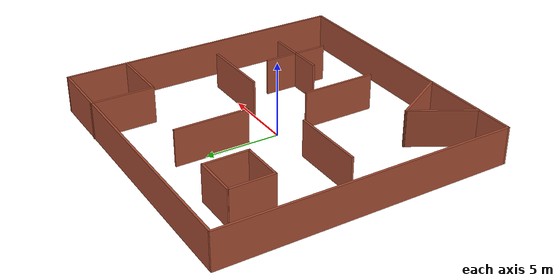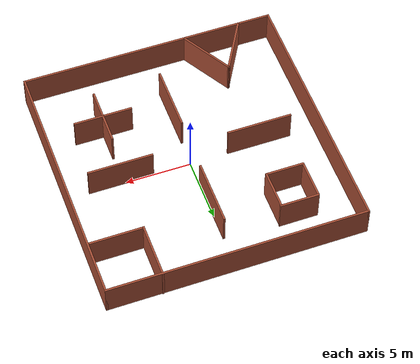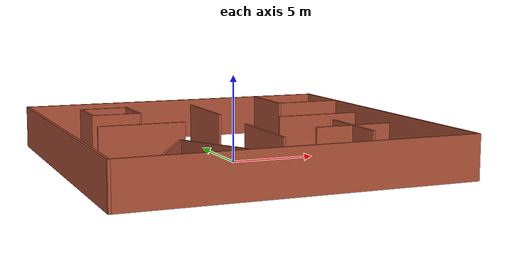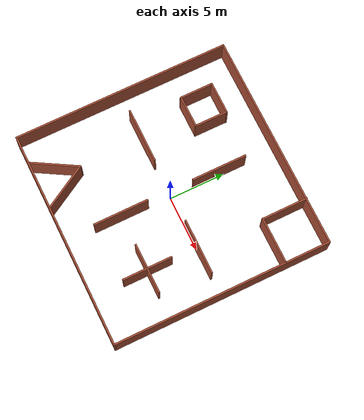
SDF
<?xml version='1.0'?>
<sdf version='1.7'>
  <model name='container'>
    <pose>-0.08 0.09238 0 0 -0 0</pose>
    <link name='Wall_10'>
      <collision name='Wall_10_Collision'>
        <geometry>
          <box>
            <size>19.75 0.15 2.5</size>
          </box>
        </geometry>
        <pose>0 0 1.25 0 -0 0</pose>
      </collision>
      <visual name='Wall_10_Visual'>
        <pose>0 0 1.25 0 -0 0</pose>
        <geometry>
          <box>
            <size>19.75 0.15 2.5</size>
          </box>
        </geometry>
        <material>
          <script>
            <uri>file://media/materials/scripts/gazebo.material</uri>
            <name>Gazebo/Bricks</name>
          </script>
          <ambient>1 1 1 1</ambient>
        </material>
        <meta>
          <layer>0</layer>
        </meta>
      </visual>
      <pose>-0 9.77762 0 0 -0 0</pose>
    </link>
    <link name='Wall_11'>
      <collision name='Wall_11_Collision'>
        <geometry>
          <box>
            <size>19.75 0.15 2.5</size>
          </box>
        </geometry>
        <pose>0 0 1.25 0 -0 0</pose>
      </collision>
      <visual name='Wall_11_Visual'>
        <pose>0 0 1.25 0 -0 0</pose>
        <geometry>
          <box>
            <size>19.75 0.15 2.5</size>
          </box>
        </geometry>
        <material>
          <script>
            <uri>file://media/materials/scripts/gazebo.material</uri>
            <name>Gazebo/Bricks</name>
          </script>
          <ambient>1 1 1 1</ambient>
        </material>
        <meta>
          <layer>0</layer>
        </meta>
      </visual>
      <pose>9.8 -0.02238 0 0 -0 -1.5708</pose>
    </link>
    <link name='Wall_12'>
      <collision name='Wall_12_Collision'>
        <geometry>
          <box>
            <size>19.75 0.15 2.5</size>
          </box>
        </geometry>
        <pose>0 0 1.25 0 -0 0</pose>
      </collision>
      <visual name='Wall_12_Visual'>
        <pose>0 0 1.25 0 -0 0</pose>
        <geometry>
          <box>
            <size>19.75 0.15 2.5</size>
          </box>
        </geometry>
        <material>
          <script>
            <uri>file://media/materials/scripts/gazebo.material</uri>
            <name>Gazebo/Bricks</name>
          </script>
          <ambient>1 1 1 1</ambient>
        </material>
        <meta>
          <layer>0</layer>
        </meta>
      </visual>
      <pose>-0 -9.82238 0 0 -0 3.14159</pose>
    </link>
    <link name='Wall_16'>
      <collision name='Wall_16_Collision'>
        <geometry>
          <box>
            <size>5 0.15 2.5</size>
          </box>
        </geometry>
        <pose>0 0 1.25 0 -0 0</pose>
      </collision>
      <visual name='Wall_16_Visual'>
        <pose>0 0 1.25 0 -0 0</pose>
        <geometry>
          <box>
            <size>5 0.15 2.5</size>
          </box>
        </geometry>
        <material>
          <script>
            <uri>file://media/materials/scripts/gazebo.material</uri>
            <name>Gazebo/Bricks</name>
          </script>
          <ambient>1 1 1 1</ambient>
        </material>
        <meta>
          <layer>0</layer>
        </meta>
      </visual>
      <pose>0.005004 -4.63433 0 0 -0 1.5708</pose>
    </link>
    <link name='Wall_19'>
      <collision name='Wall_19_Collision'>
        <geometry>
          <box>
            <size>5 0.15 2.5</size>
          </box>
        </geometry>
        <pose>0 0 1.25 0 -0 0</pose>
      </collision>
      <visual name='Wall_19_Visual'>
        <pose>0 0 1.25 0 -0 0</pose>
        <geometry>
          <box>
            <size>5 0.15 2.5</size>
          </box>
        </geometry>
        <material>
          <script>
            <uri>file://media/materials/scripts/gazebo.material</uri>
            <name>Gazebo/Bricks</name>
          </script>
          <ambient>1 1 1 1</ambient>
        </material>
        <meta>
          <layer>0</layer>
        </meta>
      </visual>
      <pose>0.064517 4.48127 0 0 -0 -1.5708</pose>
    </link>
    <link name='Wall_21'>
      <collision name='Wall_21_Collision'>
        <geometry>
          <box>
            <size>5 0.15 2.5</size>
          </box>
        </geometry>
        <pose>0 0 1.25 0 -0 0</pose>
      </collision>
      <visual name='Wall_21_Visual'>
        <pose>0 0 1.25 0 -0 0</pose>
        <geometry>
          <box>
            <size>5 0.15 2.5</size>
          </box>
        </geometry>
        <material>
          <script>
            <uri>file://media/materials/scripts/gazebo.material</uri>
            <name>Gazebo/Bricks</name>
          </script>
          <ambient>1 1 1 1</ambient>
        </material>
        <meta>
          <layer>0</layer>
        </meta>
      </visual>
      <pose>-5.3463 -0.136044 0 0 -0 0</pose>
    </link>
    <link name='Wall_23'>
      <collision name='Wall_23_Collision'>
        <geometry>
          <box>
            <size>5 0.15 2.5</size>
          </box>
        </geometry>
        <pose>0 0 1.25 0 -0 0</pose>
      </collision>
      <visual name='Wall_23_Visual'>
        <pose>0 0 1.25 0 -0 0</pose>
        <geometry>
          <box>
            <size>5 0.15 2.5</size>
          </box>
        </geometry>
        <material>
          <script>
            <uri>file://media/materials/scripts/gazebo.material</uri>
            <name>Gazebo/Bricks</name>
          </script>
          <ambient>1 1 1 1</ambient>
        </material>
        <meta>
          <layer>0</layer>
        </meta>
      </visual>
      <pose>5.4453 -0.116206 0 0 -0 0</pose>
    </link>
    <link name='Wall_27'>
      <collision name='Wall_27_Collision'>
        <geometry>
          <box>
            <size>3 0.15 2.5</size>
          </box>
        </geometry>
        <pose>0 0 1.25 0 -0 0</pose>
      </collision>
      <visual name='Wall_27_Visual'>
        <pose>0 0 1.25 0 -0 0</pose>
        <geometry>
          <box>
            <size>3 0.15 2.5</size>
          </box>
        </geometry>
        <material>
          <script>
            <uri>file://media/materials/scripts/gazebo.material</uri>
            <name>Gazebo/Bricks</name>
          </script>
          <ambient>1 1 1 1</ambient>
        </material>
        <meta>
          <layer>0</layer>
        </meta>
      </visual>
      <pose>-6.99763 5.75899 0 0 -0 -1.5708</pose>
    </link>
    <link name='Wall_28'>
      <collision name='Wall_28_Collision'>
        <geometry>
          <box>
            <size>3 0.15 2.5</size>
          </box>
        </geometry>
        <pose>0 0 1.25 0 -0 0</pose>
      </collision>
      <visual name='Wall_28_Visual'>
        <pose>0 0 1.25 0 -0 0</pose>
        <geometry>
          <box>
            <size>3 0.15 2.5</size>
          </box>
        </geometry>
        <material>
          <script>
            <uri>file://media/materials/scripts/gazebo.material</uri>
            <name>Gazebo/Bricks</name>
          </script>
          <ambient>1 1 1 1</ambient>
        </material>
        <meta>
          <layer>0</layer>
        </meta>
      </visual>
      <pose>-5.57263 4.33399 0 0 -0 0</pose>
    </link>
    <link name='Wall_29'>
      <collision name='Wall_29_Collision'>
        <geometry>
          <box>
            <size>3 0.15 2.5</size>
          </box>
        </geometry>
        <pose>0 0 1.25 0 -0 0</pose>
      </collision>
      <visual name='Wall_29_Visual'>
        <pose>0 0 1.25 0 -0 0</pose>
        <geometry>
          <box>
            <size>3 0.15 2.5</size>
          </box>
        </geometry>
        <material>
          <script>
            <uri>file://media/materials/scripts/gazebo.material</uri>
            <name>Gazebo/Bricks</name>
          </script>
          <ambient>1 1 1 1</ambient>
        </material>
        <meta>
          <layer>0</layer>
        </meta>
      </visual>
      <pose>-4.14763 5.75899 0 0 -0 1.5708</pose>
    </link>
    <link name='Wall_30'>
      <collision name='Wall_30_Collision'>
        <geometry>
          <box>
            <size>3 0.15 2.5</size>
          </box>
        </geometry>
        <pose>0 0 1.25 0 -0 0</pose>
      </collision>
      <visual name='Wall_30_Visual'>
        <pose>0 0 1.25 0 -0 0</pose>
        <geometry>
          <box>
            <size>3 0.15 2.5</size>
          </box>
        </geometry>
        <material>
          <script>
            <uri>file://media/materials/scripts/gazebo.material</uri>
            <name>Gazebo/Bricks</name>
          </script>
          <ambient>1 1 1 1</ambient>
        </material>
        <meta>
          <layer>0</layer>
        </meta>
      </visual>
      <pose>-5.5528 7.26334 0 0 -0 3.14159</pose>
    </link>
    <link name='Wall_32'>
      <collision name='Wall_32_Collision'>
        <geometry>
          <box>
            <size>4.5 0.15 2.5</size>
          </box>
        </geometry>
        <pose>0 0 1.25 0 -0 0</pose>
      </collision>
      <visual name='Wall_32_Visual'>
        <pose>0 0 1.25 0 -0 0</pose>
        <geometry>
          <box>
            <size>4.5 0.15 2.5</size>
          </box>
        </geometry>
        <material>
          <script>
            <uri>file://media/materials/scripts/gazebo.material</uri>
            <name>Gazebo/Bricks</name>
          </script>
          <ambient>1 1 1 1</ambient>
        </material>
        <meta>
          <layer>0</layer>
        </meta>
      </visual>
      <pose>-6.2077 -7.89346 0 0 -0 1.0472</pose>
    </link>
    <link name='Wall_33'>
      <collision name='Wall_33_Collision'>
        <geometry>
          <box>
            <size>4.5 0.15 2.5</size>
          </box>
        </geometry>
        <pose>0 0 1.25 0 -0 0</pose>
      </collision>
      <visual name='Wall_33_Visual'>
        <pose>0 0 1.25 0 -0 0</pose>
        <geometry>
          <box>
            <size>4.5 0.15 2.5</size>
          </box>
        </geometry>
        <material>
          <script>
            <uri>file://media/materials/scripts/gazebo.material</uri>
            <name>Gazebo/Bricks</name>
          </script>
          <ambient>1 1 1 1</ambient>
        </material>
        <meta>
          <layer>0</layer>
        </meta>
      </visual>
      <pose>-4.0327 -7.89346 0 0 -0 -1.0472</pose>
    </link>
    <link name='Wall_35'>
      <collision name='Wall_35_Collision'>
        <geometry>
          <box>
            <size>4.5 0.15 2.5</size>
          </box>
        </geometry>
        <pose>0 0 1.25 0 -0 0</pose>
      </collision>
      <visual name='Wall_35_Visual'>
        <pose>0 0 1.25 0 -0 0</pose>
        <geometry>
          <box>
            <size>4.5 0.15 2.5</size>
          </box>
        </geometry>
        <material>
          <script>
            <uri>file://media/materials/scripts/gazebo.material</uri>
            <name>Gazebo/Bricks</name>
          </script>
          <ambient>1 1 1 1</ambient>
        </material>
        <meta>
          <layer>0</layer>
        </meta>
      </visual>
      <pose>5.28178 -4.71138 0 0 -0 -1.5708</pose>
    </link>
    <link name='Wall_37'>
      <collision name='Wall_37_Collision'>
        <geometry>
          <box>
            <size>4.5 0.15 2.5</size>
          </box>
        </geometry>
        <pose>0 0 1.25 0 -0 0</pose>
      </collision>
      <visual name='Wall_37_Visual'>
        <pose>0 0 1.25 0 -0 0</pose>
        <geometry>
          <box>
            <size>4.5 0.15 2.5</size>
          </box>
        </geometry>
        <material>
          <script>
            <uri>file://media/materials/scripts/gazebo.material</uri>
            <name>Gazebo/Bricks</name>
          </script>
          <ambient>1 1 1 1</ambient>
        </material>
        <meta>
          <layer>0</layer>
        </meta>
      </visual>
      <pose>5.27465 -4.71851 0 0 -0 0</pose>
    </link>
    <link name='Wall_39'>
      <collision name='Wall_39_Collision'>
        <geometry>
          <box>
            <size>4.25 0.15 2.5</size>
          </box>
        </geometry>
        <pose>0 0 1.25 0 -0 0</pose>
      </collision>
      <visual name='Wall_39_Visual'>
        <pose>0 0 1.25 0 -0 0</pose>
        <geometry>
          <box>
            <size>4.25 0.15 2.5</size>
          </box>
        </geometry>
        <material>
          <script>
            <uri>file://media/materials/scripts/gazebo.material</uri>
            <name>Gazebo/Bricks</name>
          </script>
          <ambient>1 1 1 1</ambient>
        </material>
        <meta>
          <layer>0</layer>
        </meta>
      </visual>
      <pose>5.65869 7.77238 0 0 -0 -1.5708</pose>
    </link>
    <link name='Wall_40'>
      <collision name='Wall_40_Collision'>
        <geometry>
          <box>
            <size>4.25 0.15 2.5</size>
          </box>
        </geometry>
        <pose>0 0 1.25 0 -0 0</pose>
      </collision>
      <visual name='Wall_40_Visual'>
        <pose>0 0 1.25 0 -0 0</pose>
        <geometry>
          <box>
            <size>4.25 0.15 2.5</size>
          </box>
        </geometry>
        <material>
          <script>
            <uri>file://media/materials/scripts/gazebo.material</uri>
            <name>Gazebo/Bricks</name>
          </script>
          <ambient>1 1 1 1</ambient>
        </material>
        <meta>
          <layer>0</layer>
        </meta>
      </visual>
      <pose>7.70869 5.72238 0 0 -0 0</pose>
    </link>
    <link name='Wall_9'>
      <collision name='Wall_9_Collision'>
        <geometry>
          <box>
            <size>19.75 0.15 2.5</size>
          </box>
        </geometry>
        <pose>0 0 1.25 0 -0 0</pose>
      </collision>
      <visual name='Wall_9_Visual'>
        <pose>0 0 1.25 0 -0 0</pose>
        <geometry>
          <box>
            <size>19.75 0.15 2.5</size>
          </box>
        </geometry>
        <material>
          <script>
            <uri>file://media/materials/scripts/gazebo.material</uri>
            <name>Gazebo/Bricks</name>
          </script>
          <ambient>1 1 1 1</ambient>
        </material>
        <meta>
          <layer>0</layer>
        </meta>
      </visual>
      <pose>-9.8 -0.02238 0 0 -0 1.5708</pose>
    </link>
    <static>1</static>
  </model>
</sdf>
